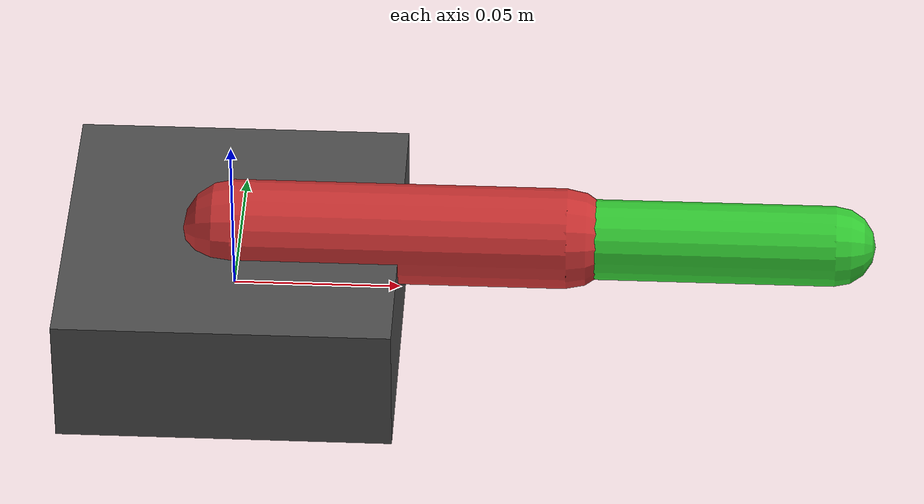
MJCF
<mujoco model="2dof_arm">
  <compiler angle="radian" />

  <option timestep="0.001" gravity="0 0 -9.81" />

  <default>
    <joint damping="0.1" armature="0.01" />
    <geom contype="1" conaffinity="1" />
  </default>

  <worldbody>
    <!-- Fixed base -->
    <body name="base" pos="0 0 0">
      <geom type="box" size="0.05 0.05 0.02" rgba="0.3 0.3 0.3 1" mass="0.1" />

      <!-- Link 1: Shoulder to elbow (10cm) -->
      <body name="link1" pos="0 0 0.02">
        <joint name="shoulder" type="hinge" axis="0 0 1"
               range="-1.57 1.57" damping="0.1" />
        <geom type="capsule" size="0.015 0.05" rgba="0.8 0.2 0.2 1"
              pos="0.05 0 0" quat="0.707 0 0.707 0" mass="0.02" />

        <!-- Link 2: Elbow to end-effector (8cm) -->
        <body name="link2" pos="0.1 0 0">
          <joint name="elbow" type="hinge" axis="0 1 0"
                 range="-1.57 1.57" damping="0.08" />
          <geom type="capsule" size="0.012 0.04" rgba="0.2 0.8 0.2 1"
                pos="0.04 0 0" quat="0.707 0 0.707 0" mass="0.015" />

          <!-- End effector -->
          <body name="end_effector" pos="0.08 0 0">
            <geom type="sphere" size="0.01" rgba="0.2 0.2 0.8 1" mass="0.005" />

            <!-- IMU sensor location (visualization) -->
            <site name="imu" pos="0 0 0" size="0.005" rgba="1 1 0 1" />
          </body>
        </body>
      </body>
    </body>
  </worldbody>

  <actuator>
    <!-- Position servos (modeling SG90 behavior) -->
    <position name="shoulder_servo" joint="shoulder" kp="2.0" />
    <position name="elbow_servo" joint="elbow" kp="2.0" />
  </actuator>

  <sensor>
    <jointpos name="shoulder_pos" joint="shoulder" />
    <jointpos name="elbow_pos" joint="elbow" />
    <framequat name="imu_quat" objtype="site" objname="imu" />
  </sensor>
</mujoco>
